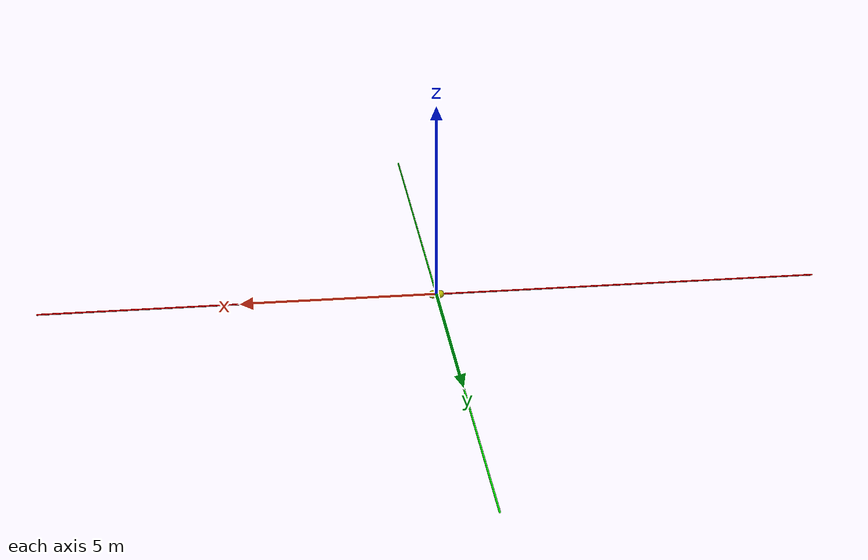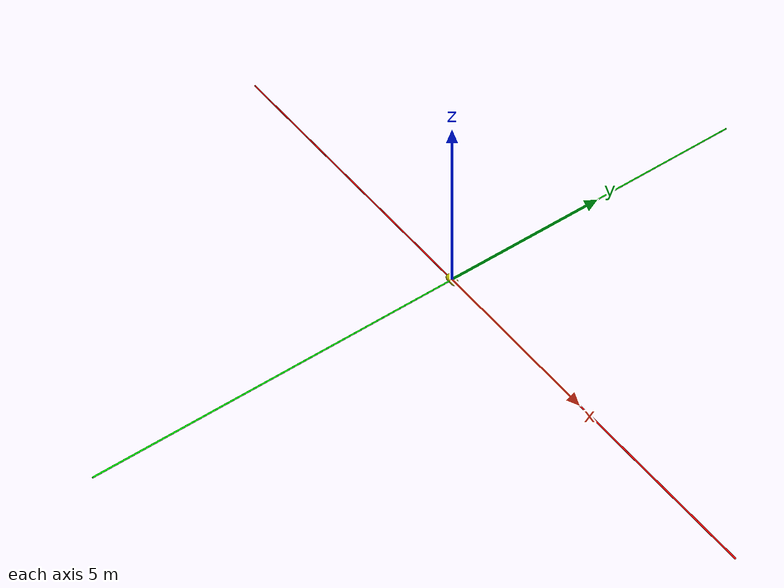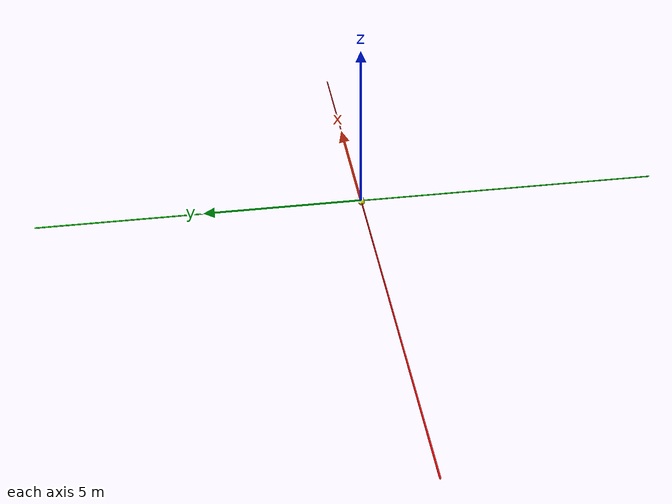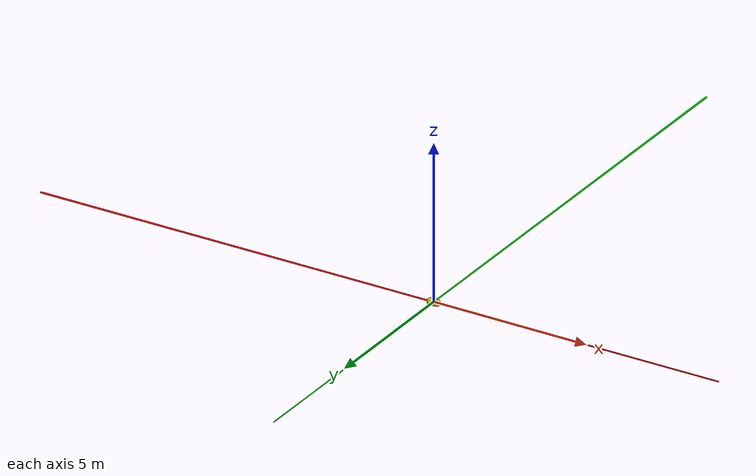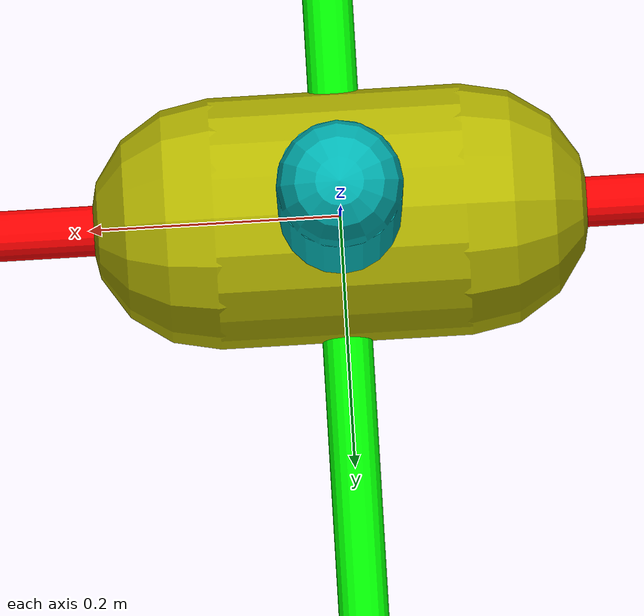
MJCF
<mujoco model="3D Inverted Pendulum">
    <compiler inertiafromgeom="true"/>
    <default>
        <joint armature="0" damping="1" limited="true"/>
        <geom contype="0" friction="1 0.5 0.5" rgba="0.7 0.7 0 1"/>
        <motor ctrlrange="-3 3"/>
    </default>
    <option gravity="0 0 -9.81" integrator="RK4" timestep="0.005"/>
    <size nstack="3000"/>
    <worldbody>
        <!-- Rail size extended from 1 to 10 -->
        <geom name="cart_rail_x" pos="0 0 0" quat="0.707 0 0.707 0" rgba="1 0 0 1" size="0.02 10" type="capsule"/>
        <geom name="cart_rail_y" pos="0 0 0" quat="0.707 0.707 0 0" rgba="0 1 0 1" size="0.02 10" type="capsule"/>
        <body name="cart" pos="0 0 0">
            <!-- Joint range extended from 1 to -9.9, 9.9 -->
            <joint axis="1 0 0" limited="true" name="slider_x" pos="0 0 0" range="-9.9 9.9" type="slide"/>
            <joint axis="0 1 0" limited="true" name="slider_y" pos="0 0 0" range="-9.9 9.9" type="slide"/>
            <geom name="cart" pos="0 0 0" quat="0.707 0 0.707 0" size="0.1 0.1" type="capsule"/>
            <body name="pole" pos="0 0 0">
                <joint name="ball" type="ball" pos="0 0 0" limited="false"/>
                <geom fromto="0 0 0 0.001 0 0.6" name="cpole" rgba="0 0.7 0.7 1" size="0.049 0.3" type="capsule"/>
            </body>
        </body>
    </worldbody>
    <actuator>
        <motor ctrllimited="true" ctrlrange="-2 2" gear="50" joint="slider_x" name="slide_x"/>
        <motor ctrllimited="true" ctrlrange="-2 2" gear="50" joint="slider_y" name="slide_y"/>
    </actuator>
</mujoco>
